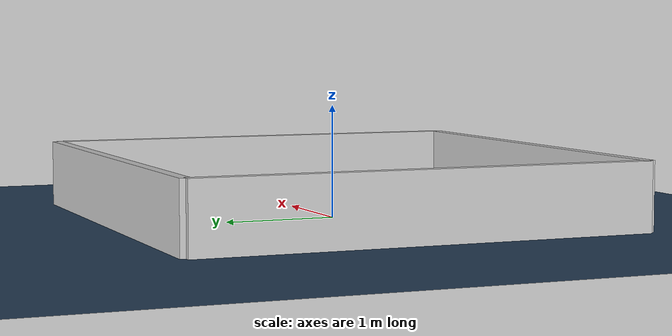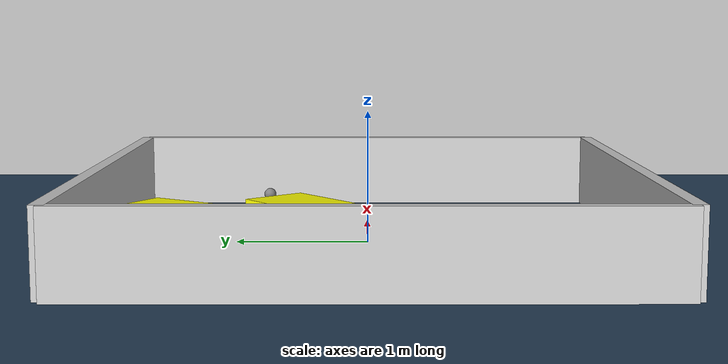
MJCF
<?xml version="1.0" ?>
<mujoco model="generated_environment">
  <option timestep="0.01" integrator="RK4" cone="elliptic"/>
  <default>
    <geom density="1"/>
  </default>
  <asset>
    <texture builtin="gradient" height="3072" rgb1="0.3 0.5 0.7" rgb2="0 0 0" type="skybox" width="512"/>
    <texture builtin="checker" height="300" mark="edge" markrgb="0.8 0.8 0.8" name="groundplane" rgb1="0.2 0.3 0.4" rgb2="0.1 0.2 0.3" type="2d" width="300"/>
    <material name="groundplane" reflectance="0.2" texrepeat="5 5" texture="groundplane" texuniform="true"/>
    <material name="robot" rgba="0.0 1.0 0.0 1"/>
  </asset>
  <worldbody>
    <light dir="0 0 -1" directional="true" pos="0 0 1.5"/>
    <geom condim="4" friction="1.0 0.005 0.001" material="groundplane" name="floor" size="0 0 0.05" type="plane"/>
    <body name="walls">
      <geom name="wall_1" condim="4" pos="-2.0 0.0 0.3" rgba="0.800000011920929 0.800000011920929 0.800000011920929 1.0" size="0.05 2.0 0.3" type="box"/>
      <geom name="wall_2" condim="4" pos="2.0 0.0 0.3" rgba="0.800000011920929 0.800000011920929 0.800000011920929 1.0" size="0.05 2.0 0.3" type="box"/>
      <geom name="wall_3" condim="4" pos="0.0 -2.0 0.3" rgba="0.800000011920929 0.800000011920929 0.800000011920929 1.0" size="2.0 0.05 0.3" type="box"/>
      <geom name="wall_4" condim="4" pos="0.0 2.0 0.3" rgba="0.800000011920929 0.800000011920929 0.800000011920929 1.0" size="2.0 0.05 0.3" type="box"/>
    </body>
    <body name="robot">
      <joint name="joint_x" type="slide" pos="0 0 0" axis="1 0 0"/>
      <joint name="joint_y" type="slide" pos="0 0 0" axis="0 1 0"/>
      <geom name="robot" type="sphere" pos="1.1395782065834639 0.826863997260948 0.2" size="0.05" mass="5." friction="1.0 0.005 0.0001" condim="4"/>
      <site name="sensor_ball"/>
    </body>
    <body name="obstacle_1_movable">
      <geom name="obstacle_1_movable" condim="4" pos="-0.5513339789274743 0.488762236102394 0.2" euler="0 0 129.45249455051444" friction="1.0 0.005 0.001" rgba="1 1 0 1" size="0.24700457513138643 0.3237607624228969 0.2" type="box" mass="0.1"/>
      <joint type="free"/>
    </body>
    <body name="obstacle_2_movable">
      <geom name="obstacle_2_movable" condim="4" pos="-0.7901779536909945 1.3067612773813875 0.2" euler="0 0 237.81128501617957" friction="1.0 0.005 0.001" rgba="1 1 0 1" size="0.4107852257326893 0.22256979240248845 0.2" type="box" mass="0.1"/>
      <joint type="free"/>
    </body>
  </worldbody>
  <actuator>
    <motor name="actuator_x" joint="joint_x" gear="1" ctrlrange="-1 1"/>
    <motor name="actuator_y" joint="joint_y" gear="1" ctrlrange="-1 1"/>
  </actuator>
</mujoco>
